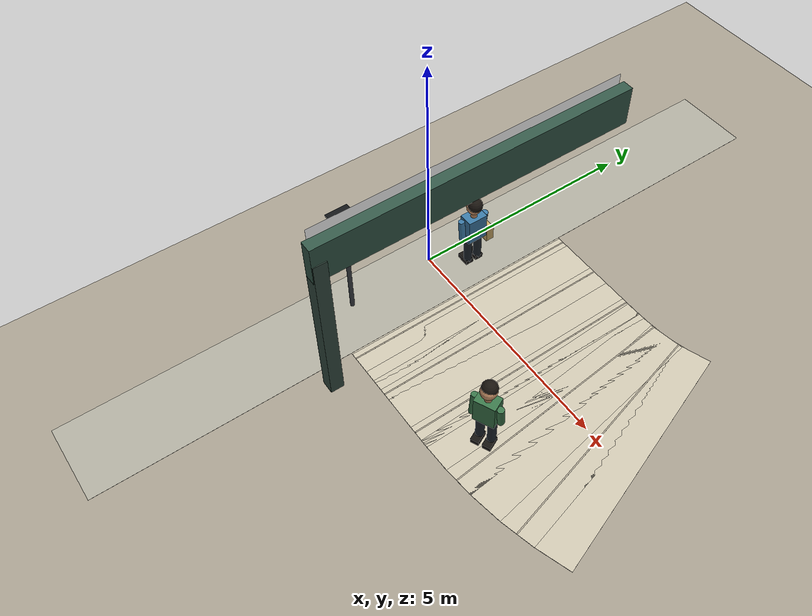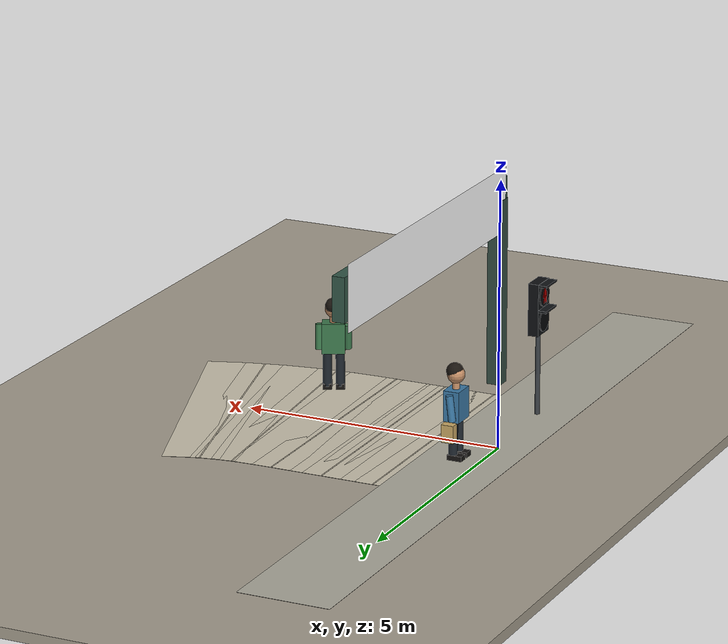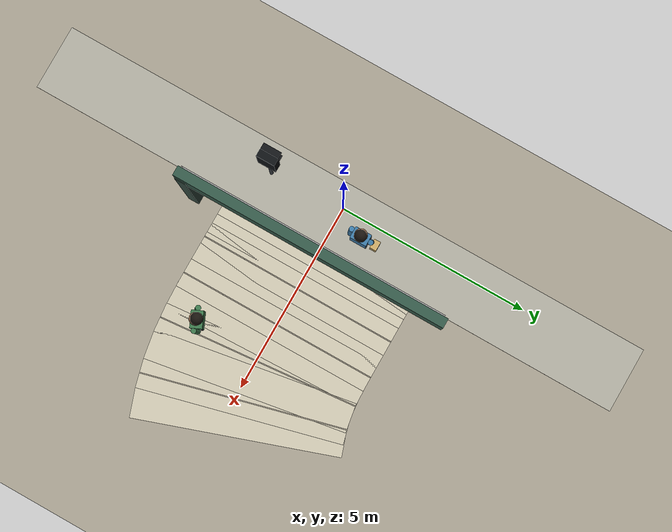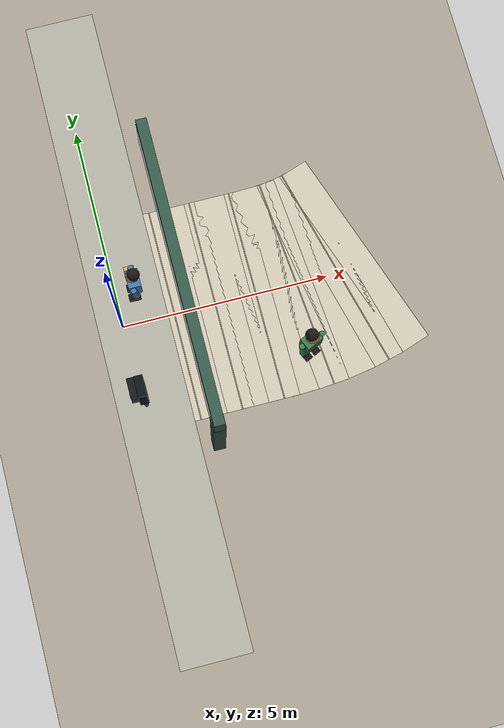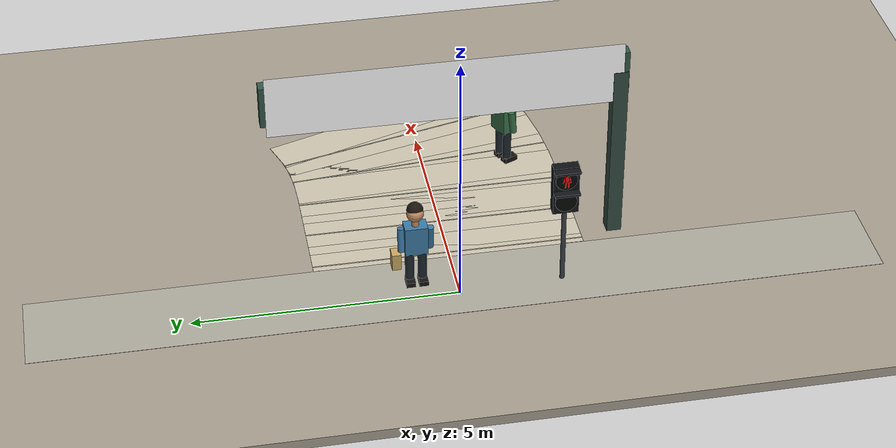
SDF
<sdf version="1.10">
 <world name="swan_market">
  <model name="ground">
   <static>true</static>
   <pose>15 0 -0.1 0 0 0</pose>
   <link name="body">
    <collision name="box_collision"><geometry><box><size>46 24 0.2</size></box></geometry></collision>
    <visual name="box_visual">
     <geometry><box><size>46 24 0.2</size></box></geometry>
     <material><ambient>0.64 0.61 0.55 1</ambient><diffuse>0.64 0.61 0.55 1</diffuse></material>
    </visual>
   </link>
  </model>
  <model name="market_paving_4">
   <static>true</static>
   <pose>0.25 0 0.002 0 0 0</pose>
   <link name="body">
    <visual name="box_visual">
     <geometry><box><size>0.75 5.2 0.004</size></box></geometry>
     <material><ambient>0.79 0.76 0.68 1</ambient><diffuse>0.79 0.76 0.68 1</diffuse></material>
    </visual>
   </link>
  </model>
  <model name="paving_joint_4">
   <static>true</static>
   <pose>0.25 0 0.0045 0 0 0</pose>
   <link name="body">
    <visual name="box_visual">
     <geometry><box><size>0.025 5.2 0.001</size></box></geometry>
     <material><ambient>0.67 0.64 0.57 1</ambient><diffuse>0.67 0.64 0.57 1</diffuse></material>
    </visual>
   </link>
  </model>
  <model name="market_paving_5">
   <static>true</static>
   <pose>0.75 0 0.002 0 0 0</pose>
   <link name="body">
    <visual name="box_visual">
     <geometry><box><size>0.75 5.2 0.004</size></box></geometry>
     <material><ambient>0.79 0.76 0.68 1</ambient><diffuse>0.79 0.76 0.68 1</diffuse></material>
    </visual>
   </link>
  </model>
  <model name="market_paving_6">
   <static>true</static>
   <pose>1.25 0 0.002 0 0 0</pose>
   <link name="body">
    <visual name="box_visual">
     <geometry><box><size>0.75 5.2 0.004</size></box></geometry>
     <material><ambient>0.79 0.76 0.68 1</ambient><diffuse>0.79 0.76 0.68 1</diffuse></material>
    </visual>
   </link>
  </model>
  <model name="paving_joint_6">
   <static>true</static>
   <pose>1.25 0 0.0045 0 0 0</pose>
   <link name="body">
    <visual name="box_visual">
     <geometry><box><size>0.025 5.2 0.001</size></box></geometry>
     <material><ambient>0.67 0.64 0.57 1</ambient><diffuse>0.67 0.64 0.57 1</diffuse></material>
    </visual>
   </link>
  </model>
  <model name="market_paving_7">
   <static>true</static>
   <pose>1.75 0 0.002 0 0 0</pose>
   <link name="body">
    <visual name="box_visual">
     <geometry><box><size>0.75 5.2 0.004</size></box></geometry>
     <material><ambient>0.79 0.76 0.68 1</ambient><diffuse>0.79 0.76 0.68 1</diffuse></material>
    </visual>
   </link>
  </model>
  <model name="market_paving_8">
   <static>true</static>
   <pose>2.25 0 0.002 0 0 0</pose>
   <link name="body">
    <visual name="box_visual">
     <geometry><box><size>0.75 5.2 0.004</size></box></geometry>
     <material><ambient>0.79 0.76 0.68 1</ambient><diffuse>0.79 0.76 0.68 1</diffuse></material>
    </visual>
   </link>
  </model>
  <model name="paving_joint_8">
   <static>true</static>
   <pose>2.25 0 0.0045 0 0 0</pose>
   <link name="body">
    <visual name="box_visual">
     <geometry><box><size>0.025 5.2 0.001</size></box></geometry>
     <material><ambient>0.67 0.64 0.57 1</ambient><diffuse>0.67 0.64 0.57 1</diffuse></material>
    </visual>
   </link>
  </model>
  <model name="market_paving_9">
   <static>true</static>
   <pose>2.75 0 0.002 0 0 0</pose>
   <link name="body">
    <visual name="box_visual">
     <geometry><box><size>0.75 5.2 0.004</size></box></geometry>
     <material><ambient>0.79 0.76 0.68 1</ambient><diffuse>0.79 0.76 0.68 1</diffuse></material>
    </visual>
   </link>
  </model>
  <model name="market_paving_10">
   <static>true</static>
   <pose>3.25 0.00031537 0.002 0 0 0.003781</pose>
   <link name="body">
    <visual name="box_visual">
     <geometry><box><size>0.75 5.2 0.004</size></box></geometry>
     <material><ambient>0.79 0.76 0.68 1</ambient><diffuse>0.79 0.76 0.68 1</diffuse></material>
    </visual>
   </link>
  </model>
  <model name="paving_joint_10">
   <static>true</static>
   <pose>3.25 0.00031537 0.0045 0 0 0.003781</pose>
   <link name="body">
    <visual name="box_visual">
     <geometry><box><size>0.025 5.2 0.001</size></box></geometry>
     <material><ambient>0.67 0.64 0.57 1</ambient><diffuse>0.67 0.64 0.57 1</diffuse></material>
    </visual>
   </link>
  </model>
  <model name="market_paving_11">
   <static>true</static>
   <pose>3.75 0.0084221 0.002 0 0 0.033398</pose>
   <link name="body">
    <visual name="box_visual">
     <geometry><box><size>0.75 5.2 0.004</size></box></geometry>
     <material><ambient>0.79 0.76 0.68 1</ambient><diffuse>0.79 0.76 0.68 1</diffuse></material>
    </visual>
   </link>
  </model>
  <model name="market_paving_12">
   <static>true</static>
   <pose>4.25 0.038143 0.002 0 0 0.089204</pose>
   <link name="body">
    <visual name="box_visual">
     <geometry><box><size>0.75 5.2 0.004</size></box></geometry>
     <material><ambient>0.79 0.76 0.68 1</ambient><diffuse>0.79 0.76 0.68 1</diffuse></material>
    </visual>
   </link>
  </model>
  <model name="paving_joint_12">
   <static>true</static>
   <pose>4.25 0.038143 0.0045 0 0 0.089204</pose>
   <link name="body">
    <visual name="box_visual">
     <geometry><box><size>0.025 5.2 0.001</size></box></geometry>
     <material><ambient>0.67 0.64 0.57 1</ambient><diffuse>0.67 0.64 0.57 1</diffuse></material>
    </visual>
   </link>
  </model>
  <model name="market_paving_13">
   <static>true</static>
   <pose>4.75 0.10125 0.002 0 0 0.16424</pose>
   <link name="body">
    <visual name="box_visual">
     <geometry><box><size>0.75 5.2 0.004</size></box></geometry>
     <material><ambient>0.79 0.76 0.68 1</ambient><diffuse>0.79 0.76 0.68 1</diffuse></material>
    </visual>
   </link>
  </model>
  <model name="market_paving_14">
   <static>true</static>
   <pose>5.25 0.20586 0.002 0 0 0.2486</pose>
   <link name="body">
    <visual name="box_visual">
     <geometry><box><size>0.75 5.2 0.004</size></box></geometry>
     <material><ambient>0.79 0.76 0.68 1</ambient><diffuse>0.79 0.76 0.68 1</diffuse></material>
    </visual>
   </link>
  </model>
  <model name="paving_joint_14">
   <static>true</static>
   <pose>5.25 0.20586 0.0045 0 0 0.2486</pose>
   <link name="body">
    <visual name="box_visual">
     <geometry><box><size>0.025 5.2 0.001</size></box></geometry>
     <material><ambient>0.67 0.64 0.57 1</ambient><diffuse>0.67 0.64 0.57 1</diffuse></material>
    </visual>
   </link>
  </model>
  <model name="market_paving_15">
   <static>true</static>
   <pose>5.75 0.35543 0.002 0 0 0.33122</pose>
   <link name="body">
    <visual name="box_visual">
     <geometry><box><size>0.75 5.2 0.004</size></box></geometry>
     <material><ambient>0.79 0.76 0.68 1</ambient><diffuse>0.79 0.76 0.68 1</diffuse></material>
    </visual>
   </link>
  </model>
  <model name="entrance_sidewalk_market">
   <static>true</static>
   <pose>0.25 0 0.014 0 0 0</pose>
   <link name="body">
    <visual name="box_visual">
     <geometry><box><size>1.7 16 0.004</size></box></geometry>
     <material><ambient>0.67 0.66 0.61 1</ambient><diffuse>0.67 0.66 0.61 1</diffuse></material>
    </visual>
   </link>
  </model>
  <model name="ped_signal_east_housing">
   <static>true</static>
   <pose>0.1 -1.95 0 0 0 -1.5708</pose>
   <link name="body">
    <collision name="pole_collision">
     <pose>0 0 1.025 0 0 0</pose>
     <geometry><cylinder><radius>0.045</radius><length>2.05</length></cylinder></geometry>
    </collision>
    <visual name="pole_visual">
     <pose>0 0 1.025 0 0 0</pose>
     <geometry><cylinder><radius>0.045</radius><length>2.05</length></cylinder></geometry>
     <material><ambient>0.23 0.25 0.27 1</ambient><diffuse>0.23 0.25 0.27 1</diffuse></material>
    </visual>
    <collision name="housing_collision">
     <pose>0 0 2.08 0 0 0</pose>
     <geometry><box><size>0.48 0.2 0.99</size></box></geometry>
    </collision>
    <visual name="housing_visual">
     <pose>0 0 2.08 0 0 0</pose>
     <geometry><box><size>0.48 0.2 0.99</size></box></geometry>
     <material><ambient>0.055 0.065 0.075 1</ambient><diffuse>0.055 0.065 0.075 1</diffuse></material>
    </visual>
    <visual name="red_lens_visual">
     <pose>0 -0.113 2.32 1.5708 0 0</pose>
     <geometry><cylinder><radius>0.205</radius><length>0.022</length></cylinder></geometry>
     <material><ambient>0.013 0.018 0.022 1</ambient><diffuse>0.013 0.018 0.022 1</diffuse></material>
    </visual>
    <visual name="red_hood_visual">
     <pose>0 -0.13 2.545 0 0 0</pose>
     <geometry><box><size>0.47 0.25 0.04</size></box></geometry>
     <material><ambient>0.07 0.08 0.09 1</ambient><diffuse>0.07 0.08 0.09 1</diffuse></material>
    </visual>
    <visual name="green_lens_visual">
     <pose>0 -0.113 1.84 1.5708 0 0</pose>
     <geometry><cylinder><radius>0.205</radius><length>0.022</length></cylinder></geometry>
     <material><ambient>0.013 0.018 0.022 1</ambient><diffuse>0.013 0.018 0.022 1</diffuse></material>
    </visual>
    <visual name="green_hood_visual">
     <pose>0 -0.13 2.065 0 0 0</pose>
     <geometry><box><size>0.47 0.25 0.04</size></box></geometry>
     <material><ambient>0.07 0.08 0.09 1</ambient><diffuse>0.07 0.08 0.09 1</diffuse></material>
    </visual>
   </link>
  </model>
  <model name="ped_signal_east_red">
   <static>true</static>
   <pose>0.1 -1.95 0 0 0 -1.5708</pose>
   <link name="body">
    <visual name="head_visual">
     <pose>-0.012 -0.132 2.457 1.5708 0 0</pose>
     <geometry><cylinder><radius>0.035</radius><length>0.01</length></cylinder></geometry>
     <material>
      <ambient>1 0.025 0.015 1</ambient>
      <diffuse>1 0.025 0.015 1</diffuse>
      <emissive>1 0.025 0.015 1</emissive>
     </material>
     <cast_shadows>false</cast_shadows>
    </visual>
    <visual name="stroke_0_visual">
     <pose>0 -0.132 2.36 0 3.1416 0</pose>
     <geometry><box><size>0.064 0.01 0.122</size></box></geometry>
     <material>
      <ambient>1 0.025 0.015 1</ambient>
      <diffuse>1 0.025 0.015 1</diffuse>
      <emissive>1 0.025 0.015 1</emissive>
     </material>
     <cast_shadows>false</cast_shadows>
    </visual>
    <visual name="stroke_1_visual">
     <pose>-0.056 -0.132 2.338 0 -2.9551 0</pose>
     <geometry><box><size>0.026 0.01 0.11987</size></box></geometry>
     <material>
      <ambient>1 0.025 0.015 1</ambient>
      <diffuse>1 0.025 0.015 1</diffuse>
      <emissive>1 0.025 0.015 1</emissive>
     </material>
     <cast_shadows>false</cast_shadows>
    </visual>
    <visual name="stroke_2_visual">
     <pose>0.056 -0.132 2.338 0 2.9551 0</pose>
     <geometry><box><size>0.026 0.01 0.11987</size></box></geometry>
     <material>
      <ambient>1 0.025 0.015 1</ambient>
      <diffuse>1 0.025 0.015 1</diffuse>
      <emissive>1 0.025 0.015 1</emissive>
     </material>
     <cast_shadows>false</cast_shadows>
    </visual>
    <visual name="stroke_3_visual">
     <pose>-0.0255 -0.132 2.2425 0 -3.075 0</pose>
     <geometry><box><size>0.032 0.01 0.1473</size></box></geometry>
     <material>
      <ambient>1 0.025 0.015 1</ambient>
      <diffuse>1 0.025 0.015 1</diffuse>
      <emissive>1 0.025 0.015 1</emissive>
     </material>
     <cast_shadows>false</cast_shadows>
    </visual>
    <visual name="stroke_4_visual">
     <pose>0.0255 -0.132 2.2425 0 3.075 0</pose>
     <geometry><box><size>0.032 0.01 0.1473</size></box></geometry>
     <material>
      <ambient>1 0.025 0.015 1</ambient>
      <diffuse>1 0.025 0.015 1</diffuse>
      <emissive>1 0.025 0.015 1</emissive>
     </material>
     <cast_shadows>false</cast_shadows>
    </visual>
   </link>
  </model>
  <model name="ped_signal_east_green">
   <static>true</static>
   <pose>0.1 -1.95 -5 0 0 -1.5708</pose>
   <link name="body">
    <visual name="head_visual">
     <pose>0.025 -0.132 1.977 1.5708 0 0</pose>
     <geometry><cylinder><radius>0.035</radius><length>0.01</length></cylinder></geometry>
     <material>
      <ambient>0.025 1 0.18 1</ambient>
      <diffuse>0.025 1 0.18 1</diffuse>
      <emissive>0.025 1 0.18 1</emissive>
     </material>
     <cast_shadows>false</cast_shadows>
    </visual>
    <visual name="stroke_0_visual">
     <pose>-0.004 -0.132 1.876 0 -2.8633 0</pose>
     <geometry><box><size>0.054 0.01 0.12848</size></box></geometry>
     <material>
      <ambient>0.025 1 0.18 1</ambient>
      <diffuse>0.025 1 0.18 1</diffuse>
      <emissive>0.025 1 0.18 1</emissive>
     </material>
     <cast_shadows>false</cast_shadows>
    </visual>
    <visual name="stroke_1_visual">
     <pose>-0.032 -0.132 1.883 0 -2.234 0</pose>
     <geometry><box><size>0.026 0.01 0.093216</size></box></geometry>
     <material>
      <ambient>0.025 1 0.18 1</ambient>
      <diffuse>0.025 1 0.18 1</diffuse>
      <emissive>0.025 1 0.18 1</emissive>
     </material>
     <cast_shadows>false</cast_shadows>
    </visual>
    <visual name="stroke_2_visual">
     <pose>-0.088 -0.132 1.8665 0 -1.2304 0</pose>
     <geometry><box><size>0.026 0.01 0.062922</size></box></geometry>
     <material>
      <ambient>0.025 1 0.18 1</ambient>
      <diffuse>0.025 1 0.18 1</diffuse>
      <emissive>0.025 1 0.18 1</emissive>
     </material>
     <cast_shadows>false</cast_shadows>
    </visual>
    <visual name="stroke_3_visual">
     <pose>0.0475 -0.132 1.872 0 2.3652 0</pose>
     <geometry><box><size>0.026 0.01 0.090492</size></box></geometry>
     <material>
      <ambient>0.025 1 0.18 1</ambient>
      <diffuse>0.025 1 0.18 1</diffuse>
      <emissive>0.025 1 0.18 1</emissive>
     </material>
     <cast_shadows>false</cast_shadows>
    </visual>
    <visual name="stroke_4_visual">
     <pose>0.097 -0.132 1.8485 0 1.369 0</pose>
     <geometry><box><size>0.026 0.01 0.056911</size></box></geometry>
     <material>
      <ambient>0.025 1 0.18 1</ambient>
      <diffuse>0.025 1 0.18 1</diffuse>
      <emissive>0.025 1 0.18 1</emissive>
     </material>
     <cast_shadows>false</cast_shadows>
    </visual>
    <visual name="stroke_5_visual">
     <pose>-0.052 -0.132 1.76 0 -2.6651 0</pose>
     <geometry><box><size>0.031 0.01 0.15154</size></box></geometry>
     <material>
      <ambient>0.025 1 0.18 1</ambient>
      <diffuse>0.025 1 0.18 1</diffuse>
      <emissive>0.025 1 0.18 1</emissive>
     </material>
     <cast_shadows>false</cast_shadows>
    </visual>
    <visual name="stroke_6_visual">
     <pose>0.0195 -0.132 1.7905 0 2.1749 0</pose>
     <geometry><box><size>0.031 0.01 0.098267</size></box></geometry>
     <material>
      <ambient>0.025 1 0.18 1</ambient>
      <diffuse>0.025 1 0.18 1</diffuse>
      <emissive>0.025 1 0.18 1</emissive>
     </material>
     <cast_shadows>false</cast_shadows>
    </visual>
    <visual name="stroke_7_visual">
     <pose>0.0705 -0.132 1.7295 0 2.74 0</pose>
     <geometry><box><size>0.031 0.01 0.09131</size></box></geometry>
     <material>
      <ambient>0.025 1 0.18 1</ambient>
      <diffuse>0.025 1 0.18 1</diffuse>
      <emissive>0.025 1 0.18 1</emissive>
     </material>
     <cast_shadows>false</cast_shadows>
    </visual>
   </link>
  </model>
  <model name="entrance_post_-1">
   <static>true</static>
   <pose>1.5 -3.25 1.8 0 0 0</pose>
   <link name="body">
    <collision name="box_collision"><geometry><box><size>0.28 0.28 3.6</size></box></geometry></collision>
    <visual name="box_visual">
     <geometry><box><size>0.28 0.28 3.6</size></box></geometry>
     <material><ambient>0.2 0.29 0.25 1</ambient><diffuse>0.2 0.29 0.25 1</diffuse></material>
    </visual>
   </link>
  </model>
  <model name="entrance_header">
   <static>true</static>
   <pose>1.5 0 3.6 0 0 0</pose>
   <link name="body">
    <collision name="box_collision"><geometry><box><size>0.24 6.8 0.82</size></box></geometry></collision>
    <visual name="box_visual">
     <geometry><box><size>0.24 6.8 0.82</size></box></geometry>
     <material><ambient>0.2 0.34 0.28 1</ambient><diffuse>0.2 0.34 0.28 1</diffuse></material>
    </visual>
   </link>
  </model>
  <model name="sign_entrance">
   <static>true</static>
   <pose>1.365 0 3.6 0 0 -1.5708</pose>
   <link name="body">
    <visual name="lettering">
     <geometry>
      <mesh><uri>model://swan_market_assets/meshes/entrance.dae</uri><scale>6.6 1 1.2374999999999998</scale></mesh>
     </geometry>
     <material>
      <ambient>1 1 1 1</ambient>
      <diffuse>1 1 1 1</diffuse>
      <emissive>0 0 0 1</emissive>
      <pbr>
       <metal>
        <albedo_map>model://swan_market_assets/materials/textures/entrance.png</albedo_map>
        <metalness>0</metalness>
        <roughness>1</roughness>
       </metal>
      </pbr>
     </material>
    </visual>
   </link>
  </model>
  <model name="crowd_01">
   <static>true</static>
   <pose>4.0963 -1.6274 0 0 0 -1.1416</pose>
   <link name="body">
    <collision name="leg_-1_collision">
     <pose>0 -0.12 0.4 0 0 0</pose>
     <geometry><cylinder><radius>0.085</radius><length>0.68</length></cylinder></geometry>
    </collision>
    <visual name="leg_-1_visual">
     <pose>0 -0.12 0.4 0 0 0</pose>
     <geometry><cylinder><radius>0.085</radius><length>0.68</length></cylinder></geometry>
     <material><ambient>0.12 0.15 0.18 1</ambient><diffuse>0.12 0.15 0.18 1</diffuse></material>
    </visual>
    <collision name="shoe_-1_collision">
     <pose>0.06 -0.12 0.055 0 0 0</pose>
     <geometry><box><size>0.28 0.17 0.11</size></box></geometry>
    </collision>
    <visual name="shoe_-1_visual">
     <pose>0.06 -0.12 0.055 0 0 0</pose>
     <geometry><box><size>0.28 0.17 0.11</size></box></geometry>
     <material><ambient>0.08 0.07 0.06 1</ambient><diffuse>0.08 0.07 0.06 1</diffuse></material>
    </visual>
    <collision name="arm_-1_collision">
     <pose>0.02 -0.27 1.02 0 -0.12 0</pose>
     <geometry><cylinder><radius>0.068</radius><length>0.48</length></cylinder></geometry>
    </collision>
    <visual name="arm_-1_visual">
     <pose>0.02 -0.27 1.02 0 -0.12 0</pose>
     <geometry><cylinder><radius>0.068</radius><length>0.48</length></cylinder></geometry>
     <material><ambient>0.23 0.46 0.29 1</ambient><diffuse>0.23 0.46 0.29 1</diffuse></material>
    </visual>
    <collision name="leg_1_collision">
     <pose>0 0.12 0.4 0 0 0</pose>
     <geometry><cylinder><radius>0.085</radius><length>0.68</length></cylinder></geometry>
    </collision>
    <visual name="leg_1_visual">
     <pose>0 0.12 0.4 0 0 0</pose>
     <geometry><cylinder><radius>0.085</radius><length>0.68</length></cylinder></geometry>
     <material><ambient>0.12 0.15 0.18 1</ambient><diffuse>0.12 0.15 0.18 1</diffuse></material>
    </visual>
    <collision name="shoe_1_collision">
     <pose>0.06 0.12 0.055 0 0 0</pose>
     <geometry><box><size>0.28 0.17 0.11</size></box></geometry>
    </collision>
    <visual name="shoe_1_visual">
     <pose>0.06 0.12 0.055 0 0 0</pose>
     <geometry><box><size>0.28 0.17 0.11</size></box></geometry>
     <material><ambient>0.08 0.07 0.06 1</ambient><diffuse>0.08 0.07 0.06 1</diffuse></material>
    </visual>
    <collision name="arm_1_collision">
     <pose>0.02 0.27 1.02 0 0.12 0</pose>
     <geometry><cylinder><radius>0.068</radius><length>0.48</length></cylinder></geometry>
    </collision>
    <visual name="arm_1_visual">
     <pose>0.02 0.27 1.02 0 0.12 0</pose>
     <geometry><cylinder><radius>0.068</radius><length>0.48</length></cylinder></geometry>
     <material><ambient>0.23 0.46 0.29 1</ambient><diffuse>0.23 0.46 0.29 1</diffuse></material>
    </visual>
    <collision name="torso_collision">
     <pose>0 0 1.02 0 0 0</pose>
     <geometry><box><size>0.3 0.43 0.58</size></box></geometry>
    </collision>
    <visual name="torso_visual">
     <pose>0 0 1.02 0 0 0</pose>
     <geometry><box><size>0.3 0.43 0.58</size></box></geometry>
     <material><ambient>0.23 0.46 0.29 1</ambient><diffuse>0.23 0.46 0.29 1</diffuse></material>
    </visual>
    <visual name="neck_visual">
     <pose>0 0 1.37 0 0 0</pose>
     <geometry><cylinder><radius>0.07</radius><length>0.13</length></cylinder></geometry>
     <material><ambient>0.77 0.56 0.4 1</ambient><diffuse>0.77 0.56 0.4 1</diffuse></material>
    </visual>
    <collision name="head_collision">
     <pose>0 0 1.57 0 0 0</pose>
     <geometry><sphere><radius>0.16</radius></sphere></geometry>
    </collision>
    <visual name="head_visual">
     <pose>0 0 1.57 0 0 0</pose>
     <geometry><sphere><radius>0.16</radius></sphere></geometry>
     <material><ambient>0.77 0.56 0.4 1</ambient><diffuse>0.77 0.56 0.4 1</diffuse></material>
    </visual>
    <visual name="hair_visual">
     <pose>-0.025 0 1.63 0 0 0</pose>
     <geometry><sphere><radius>0.155</radius></sphere></geometry>
     <material><ambient>0.1 0.08 0.06 1</ambient><diffuse>0.1 0.08 0.06 1</diffuse></material>
    </visual>
   </link>
  </model>
  <model name="crossing_pedestrian_2">
   <static>true</static>
   <pose>0.5 0.75 0 0 0 3.1416</pose>
   <link name="body">
    <collision name="leg_-1_collision">
     <pose>0 -0.12 0.4 0 0 0</pose>
     <geometry><cylinder><radius>0.085</radius><length>0.68</length></cylinder></geometry>
    </collision>
    <visual name="leg_-1_visual">
     <pose>0 -0.12 0.4 0 0 0</pose>
     <geometry><cylinder><radius>0.085</radius><length>0.68</length></cylinder></geometry>
     <material><ambient>0.12 0.15 0.18 1</ambient><diffuse>0.12 0.15 0.18 1</diffuse></material>
    </visual>
    <collision name="shoe_-1_collision">
     <pose>0.06 -0.12 0.055 0 0 0</pose>
     <geometry><box><size>0.28 0.17 0.11</size></box></geometry>
    </collision>
    <visual name="shoe_-1_visual">
     <pose>0.06 -0.12 0.055 0 0 0</pose>
     <geometry><box><size>0.28 0.17 0.11</size></box></geometry>
     <material><ambient>0.08 0.07 0.06 1</ambient><diffuse>0.08 0.07 0.06 1</diffuse></material>
    </visual>
    <collision name="arm_-1_collision">
     <pose>0.02 -0.27 1.02 0 -0.12 0</pose>
     <geometry><cylinder><radius>0.068</radius><length>0.48</length></cylinder></geometry>
    </collision>
    <visual name="arm_-1_visual">
     <pose>0.02 -0.27 1.02 0 -0.12 0</pose>
     <geometry><cylinder><radius>0.068</radius><length>0.48</length></cylinder></geometry>
     <material><ambient>0.23 0.47 0.64 1</ambient><diffuse>0.23 0.47 0.64 1</diffuse></material>
    </visual>
    <collision name="leg_1_collision">
     <pose>0 0.12 0.4 0 0 0</pose>
     <geometry><cylinder><radius>0.085</radius><length>0.68</length></cylinder></geometry>
    </collision>
    <visual name="leg_1_visual">
     <pose>0 0.12 0.4 0 0 0</pose>
     <geometry><cylinder><radius>0.085</radius><length>0.68</length></cylinder></geometry>
     <material><ambient>0.12 0.15 0.18 1</ambient><diffuse>0.12 0.15 0.18 1</diffuse></material>
    </visual>
    <collision name="shoe_1_collision">
     <pose>0.06 0.12 0.055 0 0 0</pose>
     <geometry><box><size>0.28 0.17 0.11</size></box></geometry>
    </collision>
    <visual name="shoe_1_visual">
     <pose>0.06 0.12 0.055 0 0 0</pose>
     <geometry><box><size>0.28 0.17 0.11</size></box></geometry>
     <material><ambient>0.08 0.07 0.06 1</ambient><diffuse>0.08 0.07 0.06 1</diffuse></material>
    </visual>
    <collision name="arm_1_collision">
     <pose>0.02 0.27 1.02 0 0.12 0</pose>
     <geometry><cylinder><radius>0.068</radius><length>0.48</length></cylinder></geometry>
    </collision>
    <visual name="arm_1_visual">
     <pose>0.02 0.27 1.02 0 0.12 0</pose>
     <geometry><cylinder><radius>0.068</radius><length>0.48</length></cylinder></geometry>
     <material><ambient>0.23 0.47 0.64 1</ambient><diffuse>0.23 0.47 0.64 1</diffuse></material>
    </visual>
    <collision name="torso_collision">
     <pose>0 0 1.02 0 0 0</pose>
     <geometry><box><size>0.3 0.43 0.58</size></box></geometry>
    </collision>
    <visual name="torso_visual">
     <pose>0 0 1.02 0 0 0</pose>
     <geometry><box><size>0.3 0.43 0.58</size></box></geometry>
     <material><ambient>0.23 0.47 0.64 1</ambient><diffuse>0.23 0.47 0.64 1</diffuse></material>
    </visual>
    <visual name="neck_visual">
     <pose>0 0 1.37 0 0 0</pose>
     <geometry><cylinder><radius>0.07</radius><length>0.13</length></cylinder></geometry>
     <material><ambient>0.77 0.56 0.4 1</ambient><diffuse>0.77 0.56 0.4 1</diffuse></material>
    </visual>
    <collision name="head_collision">
     <pose>0 0 1.57 0 0 0</pose>
     <geometry><sphere><radius>0.16</radius></sphere></geometry>
    </collision>
    <visual name="head_visual">
     <pose>0 0 1.57 0 0 0</pose>
     <geometry><sphere><radius>0.16</radius></sphere></geometry>
     <material><ambient>0.77 0.56 0.4 1</ambient><diffuse>0.77 0.56 0.4 1</diffuse></material>
    </visual>
    <visual name="hair_visual">
     <pose>-0.025 0 1.63 0 0 0</pose>
     <geometry><sphere><radius>0.155</radius></sphere></geometry>
     <material><ambient>0.1 0.08 0.06 1</ambient><diffuse>0.1 0.08 0.06 1</diffuse></material>
    </visual>
    <collision name="shopping_bag_collision">
     <pose>0.04 -0.38 0.6 0 0 0</pose>
     <geometry><box><size>0.24 0.17 0.33</size></box></geometry>
    </collision>
    <visual name="shopping_bag_visual">
     <pose>0.04 -0.38 0.6 0 0 0</pose>
     <geometry><box><size>0.24 0.17 0.33</size></box></geometry>
     <material><ambient>0.78 0.65 0.39 1</ambient><diffuse>0.78 0.65 0.39 1</diffuse></material>
    </visual>
   </link>
  </model>
 </world>
</sdf>
